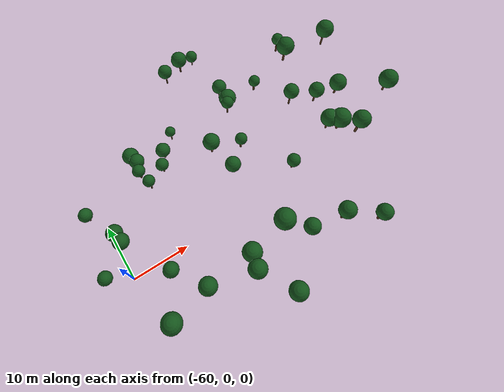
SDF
<sdf version="1.10">
 <world name="hiking_lora_world">
  <model name="valley_forest_trees">
   <static>true</static>
   <link name="trees">
    <visual name="trunk_0">
     <pose>-50.8435 13.5058 5.3451 0 0 0</pose>
     <geometry><cylinder><radius>0.1746</radius><length>2.1231</length></cylinder></geometry>
     <material><ambient>0.2016 0.12240000000000001 0.0576 1</ambient><diffuse>0.28 0.17 0.08 1</diffuse></material>
    </visual>
    <visual name="canopy_0">
     <pose>-50.8435 13.5058 7.0061 0 0 0</pose>
     <geometry><sphere><radius>1.0897</radius></sphere></geometry>
     <material>
      <ambient>0.0576 0.24480000000000002 0.07919999999999999 1</ambient>
      <diffuse>0.08 0.34 0.11 1</diffuse>
     </material>
    </visual>
    <visual name="trunk_1">
     <pose>-32.5349 14.9153 10.3433 0 0 0</pose>
     <geometry><cylinder><radius>0.1518</radius><length>1.9801</length></cylinder></geometry>
     <material><ambient>0.2016 0.12240000000000001 0.0576 1</ambient><diffuse>0.28 0.17 0.08 1</diffuse></material>
    </visual>
    <visual name="canopy_1">
     <pose>-32.5349 14.9153 12.1213 0 0 0</pose>
     <geometry><sphere><radius>1.4326</radius></sphere></geometry>
     <material>
      <ambient>0.0576 0.24480000000000002 0.07919999999999999 1</ambient>
      <diffuse>0.08 0.34 0.11 1</diffuse>
     </material>
    </visual>
    <visual name="trunk_2">
     <pose>-16.4017 12.459 19.0402 0 0 0</pose>
     <geometry><cylinder><radius>0.1387</radius><length>2.6609</length></cylinder></geometry>
     <material><ambient>0.2016 0.12240000000000001 0.0576 1</ambient><diffuse>0.28 0.17 0.08 1</diffuse></material>
    </visual>
    <visual name="canopy_2">
     <pose>-16.4017 12.459 21.1092 0 0 0</pose>
     <geometry><sphere><radius>1.3427</radius></sphere></geometry>
     <material>
      <ambient>0.0576 0.24480000000000002 0.07919999999999999 1</ambient>
      <diffuse>0.08 0.34 0.11 1</diffuse>
     </material>
    </visual>
    <visual name="trunk_3">
     <pose>-39.3307 -8.7537 20.4865 0 0 0</pose>
     <geometry><cylinder><radius>0.1766</radius><length>1.851</length></cylinder></geometry>
     <material><ambient>0.2016 0.12240000000000001 0.0576 1</ambient><diffuse>0.28 0.17 0.08 1</diffuse></material>
    </visual>
    <visual name="canopy_3">
     <pose>-39.3307 -8.7537 22.165 0 0 0</pose>
     <geometry><sphere><radius>1.3692</radius></sphere></geometry>
     <material>
      <ambient>0.0576 0.24480000000000002 0.07919999999999999 1</ambient>
      <diffuse>0.08 0.34 0.11 1</diffuse>
     </material>
    </visual>
    <visual name="trunk_4">
     <pose>-32.3408 27.7564 7.7198 0 0 0</pose>
     <geometry><cylinder><radius>0.111</radius><length>1.7271</length></cylinder></geometry>
     <material><ambient>0.2016 0.12240000000000001 0.0576 1</ambient><diffuse>0.28 0.17 0.08 1</diffuse></material>
    </visual>
    <visual name="canopy_4">
     <pose>-32.3408 27.7564 9.1526 0 0 0</pose>
     <geometry><sphere><radius>1.035</radius></sphere></geometry>
     <material>
      <ambient>0.0576 0.24480000000000002 0.07919999999999999 1</ambient>
      <diffuse>0.08 0.34 0.11 1</diffuse>
     </material>
    </visual>
    <visual name="trunk_5">
     <pose>-33.1917 13.8835 10.7998 0 0 0</pose>
     <geometry><cylinder><radius>0.1252</radius><length>2.4874</length></cylinder></geometry>
     <material><ambient>0.2016 0.12240000000000001 0.0576 1</ambient><diffuse>0.28 0.17 0.08 1</diffuse></material>
    </visual>
    <visual name="canopy_5">
     <pose>-33.1917 13.8835 12.6089 0 0 0</pose>
     <geometry><sphere><radius>1.028</radius></sphere></geometry>
     <material>
      <ambient>0.0576 0.24480000000000002 0.07919999999999999 1</ambient>
      <diffuse>0.08 0.34 0.11 1</diffuse>
     </material>
    </visual>
    <visual name="trunk_6">
     <pose>-32.3789 17.782 9.6566 0 0 0</pose>
     <geometry><cylinder><radius>0.1182</radius><length>2.6484</length></cylinder></geometry>
     <material><ambient>0.2016 0.12240000000000001 0.0576 1</ambient><diffuse>0.28 0.17 0.08 1</diffuse></material>
    </visual>
    <visual name="canopy_6">
     <pose>-32.3789 17.782 11.6486 0 0 0</pose>
     <geometry><sphere><radius>1.2141</radius></sphere></geometry>
     <material>
      <ambient>0.0576 0.24480000000000002 0.07919999999999999 1</ambient>
      <diffuse>0.08 0.34 0.11 1</diffuse>
     </material>
    </visual>
    <visual name="trunk_7">
     <pose>-45.2713 -11.8012 20.4415 0 0 0</pose>
     <geometry><cylinder><radius>0.1621</radius><length>2.1933</length></cylinder></geometry>
     <material><ambient>0.2016 0.12240000000000001 0.0576 1</ambient><diffuse>0.28 0.17 0.08 1</diffuse></material>
    </visual>
    <visual name="canopy_7">
     <pose>-45.2713 -11.8012 22.1797 0 0 0</pose>
     <geometry><sphere><radius>1.1665</radius></sphere></geometry>
     <material>
      <ambient>0.0576 0.24480000000000002 0.07919999999999999 1</ambient>
      <diffuse>0.08 0.34 0.11 1</diffuse>
     </material>
    </visual>
    <visual name="trunk_8">
     <pose>-32.4334 -11.8764 20.4818 0 0 0</pose>
     <geometry><cylinder><radius>0.1607</radius><length>2.3991</length></cylinder></geometry>
     <material><ambient>0.2016 0.12240000000000001 0.0576 1</ambient><diffuse>0.28 0.17 0.08 1</diffuse></material>
    </visual>
    <visual name="canopy_8">
     <pose>-32.4334 -11.8764 22.303 0 0 0</pose>
     <geometry><sphere><radius>1.1304</radius></sphere></geometry>
     <material>
      <ambient>0.0576 0.24480000000000002 0.07919999999999999 1</ambient>
      <diffuse>0.08 0.34 0.11 1</diffuse>
     </material>
    </visual>
    <visual name="trunk_9">
     <pose>-50.3086 15.3823 4.8732 0 0 0</pose>
     <geometry><cylinder><radius>0.1323</radius><length>2.2683</length></cylinder></geometry>
     <material><ambient>0.2016 0.12240000000000001 0.0576 1</ambient><diffuse>0.28 0.17 0.08 1</diffuse></material>
    </visual>
    <visual name="canopy_9">
     <pose>-50.3086 15.3823 6.7108 0 0 0</pose>
     <geometry><sphere><radius>1.279</radius></sphere></geometry>
     <material>
      <ambient>0.0576 0.24480000000000002 0.07919999999999999 1</ambient>
      <diffuse>0.08 0.34 0.11 1</diffuse>
     </material>
    </visual>
    <visual name="trunk_10">
     <pose>-22.3897 -2.9709 19.5791 0 0 0</pose>
     <geometry><cylinder><radius>0.1865</radius><length>2.6411</length></cylinder></geometry>
     <material><ambient>0.2016 0.12240000000000001 0.0576 1</ambient><diffuse>0.28 0.17 0.08 1</diffuse></material>
    </visual>
    <visual name="canopy_10">
     <pose>-22.3897 -2.9709 21.595 0 0 0</pose>
     <geometry><sphere><radius>1.2642</radius></sphere></geometry>
     <material>
      <ambient>0.0576 0.24480000000000002 0.07919999999999999 1</ambient>
      <diffuse>0.08 0.34 0.11 1</diffuse>
     </material>
    </visual>
    <visual name="trunk_11">
     <pose>-44.7259 -9.884 20.2569 0 0 0</pose>
     <geometry><cylinder><radius>0.1703</radius><length>2.1465</length></cylinder></geometry>
     <material><ambient>0.2016 0.12240000000000001 0.0576 1</ambient><diffuse>0.28 0.17 0.08 1</diffuse></material>
    </visual>
    <visual name="canopy_11">
     <pose>-44.7259 -9.884 21.9981 0 0 0</pose>
     <geometry><sphere><radius>1.2146</radius></sphere></geometry>
     <material>
      <ambient>0.0576 0.24480000000000002 0.07919999999999999 1</ambient>
      <diffuse>0.08 0.34 0.11 1</diffuse>
     </material>
    </visual>
    <visual name="trunk_12">
     <pose>-33.2284 -2.6191 18.9386 0 0 0</pose>
     <geometry><cylinder><radius>0.1167</radius><length>1.7686</length></cylinder></geometry>
     <material><ambient>0.2016 0.12240000000000001 0.0576 1</ambient><diffuse>0.28 0.17 0.08 1</diffuse></material>
    </visual>
    <visual name="canopy_12">
     <pose>-33.2284 -2.6191 20.3261 0 0 0</pose>
     <geometry><sphere><radius>0.9149</radius></sphere></geometry>
     <material>
      <ambient>0.0576 0.24480000000000002 0.07919999999999999 1</ambient>
      <diffuse>0.08 0.34 0.11 1</diffuse>
     </material>
    </visual>
    <visual name="trunk_13">
     <pose>-35.8509 5.7956 14.032 0 0 0</pose>
     <geometry><cylinder><radius>0.1648</radius><length>1.9745</length></cylinder></geometry>
     <material><ambient>0.2016 0.12240000000000001 0.0576 1</ambient><diffuse>0.28 0.17 0.08 1</diffuse></material>
    </visual>
    <visual name="canopy_13">
     <pose>-35.8509 5.7956 15.5241 0 0 0</pose>
     <geometry><sphere><radius>0.9179</radius></sphere></geometry>
     <material>
      <ambient>0.0576 0.24480000000000002 0.07919999999999999 1</ambient>
      <diffuse>0.08 0.34 0.11 1</diffuse>
     </material>
    </visual>
    <visual name="trunk_14">
     <pose>-56.3447 -11.3403 17.7225 0 0 0</pose>
     <geometry><cylinder><radius>0.186</radius><length>2.7566</length></cylinder></geometry>
     <material><ambient>0.2016 0.12240000000000001 0.0576 1</ambient><diffuse>0.28 0.17 0.08 1</diffuse></material>
    </visual>
    <visual name="canopy_14">
     <pose>-56.3447 -11.3403 19.8147 0 0 0</pose>
     <geometry><sphere><radius>1.298</radius></sphere></geometry>
     <material>
      <ambient>0.0576 0.24480000000000002 0.07919999999999999 1</ambient>
      <diffuse>0.08 0.34 0.11 1</diffuse>
     </material>
    </visual>
    <visual name="trunk_15">
     <pose>-26.2494 7.094 16.7737 0 0 0</pose>
     <geometry><cylinder><radius>0.1265</radius><length>2.7188</length></cylinder></geometry>
     <material><ambient>0.2016 0.12240000000000001 0.0576 1</ambient><diffuse>0.28 0.17 0.08 1</diffuse></material>
    </visual>
    <visual name="canopy_15">
     <pose>-26.2494 7.094 18.7575 0 0 0</pose>
     <geometry><sphere><radius>1.1353</radius></sphere></geometry>
     <material>
      <ambient>0.0576 0.24480000000000002 0.07919999999999999 1</ambient>
      <diffuse>0.08 0.34 0.11 1</diffuse>
     </material>
    </visual>
    <visual name="trunk_16">
     <pose>-37.3044 -11.2553 20.9589 0 0 0</pose>
     <geometry><cylinder><radius>0.1293</radius><length>2.2974</length></cylinder></geometry>
     <material><ambient>0.2016 0.12240000000000001 0.0576 1</ambient><diffuse>0.28 0.17 0.08 1</diffuse></material>
    </visual>
    <visual name="canopy_16">
     <pose>-37.3044 -11.2553 22.6793 0 0 0</pose>
     <geometry><sphere><radius>1.0396</radius></sphere></geometry>
     <material>
      <ambient>0.0576 0.24480000000000002 0.07919999999999999 1</ambient>
      <diffuse>0.08 0.34 0.11 1</diffuse>
     </material>
    </visual>
    <visual name="trunk_17">
     <pose>-21.374 15.1419 15.5436 0 0 0</pose>
     <geometry><cylinder><radius>0.1712</radius><length>2.748</length></cylinder></geometry>
     <material><ambient>0.2016 0.12240000000000001 0.0576 1</ambient><diffuse>0.28 0.17 0.08 1</diffuse></material>
    </visual>
    <visual name="canopy_17">
     <pose>-21.374 15.1419 17.7108 0 0 0</pose>
     <geometry><sphere><radius>1.442</radius></sphere></geometry>
     <material>
      <ambient>0.0576 0.24480000000000002 0.07919999999999999 1</ambient>
      <diffuse>0.08 0.34 0.11 1</diffuse>
     </material>
    </visual>
    <visual name="trunk_18">
     <pose>-24.2516 -1.1135 19.1632 0 0 0</pose>
     <geometry><cylinder><radius>0.158</radius><length>2.028</length></cylinder></geometry>
     <material><ambient>0.2016 0.12240000000000001 0.0576 1</ambient><diffuse>0.28 0.17 0.08 1</diffuse></material>
    </visual>
    <visual name="canopy_18">
     <pose>-24.2516 -1.1135 20.9495 0 0 0</pose>
     <geometry><sphere><radius>1.4041</radius></sphere></geometry>
     <material>
      <ambient>0.0576 0.24480000000000002 0.07919999999999999 1</ambient>
      <diffuse>0.08 0.34 0.11 1</diffuse>
     </material>
    </visual>
    <visual name="trunk_19">
     <pose>-39.3625 2.5544 15.0531 0 0 0</pose>
     <geometry><cylinder><radius>0.1685</radius><length>1.9514</length></cylinder></geometry>
     <material><ambient>0.2016 0.12240000000000001 0.0576 1</ambient><diffuse>0.28 0.17 0.08 1</diffuse></material>
    </visual>
    <visual name="canopy_19">
     <pose>-39.3625 2.5544 16.6555 0 0 0</pose>
     <geometry><sphere><radius>1.1395</radius></sphere></geometry>
     <material>
      <ambient>0.0576 0.24480000000000002 0.07919999999999999 1</ambient>
      <diffuse>0.08 0.34 0.11 1</diffuse>
     </material>
    </visual>
    <visual name="trunk_20">
     <pose>-28.0254 -14.3344 18.987 0 0 0</pose>
     <geometry><cylinder><radius>0.179</radius><length>2.0737</length></cylinder></geometry>
     <material><ambient>0.2016 0.12240000000000001 0.0576 1</ambient><diffuse>0.28 0.17 0.08 1</diffuse></material>
    </visual>
    <visual name="canopy_20">
     <pose>-28.0254 -14.3344 20.6173 0 0 0</pose>
     <geometry><sphere><radius>1.079</radius></sphere></geometry>
     <material>
      <ambient>0.0576 0.24480000000000002 0.07919999999999999 1</ambient>
      <diffuse>0.08 0.34 0.11 1</diffuse>
     </material>
    </visual>
    <visual name="trunk_21">
     <pose>-20.627 3.8595 18.9225 0 0 0</pose>
     <geometry><cylinder><radius>0.1529</radius><length>1.9142</length></cylinder></geometry>
     <material><ambient>0.2016 0.12240000000000001 0.0576 1</ambient><diffuse>0.28 0.17 0.08 1</diffuse></material>
    </visual>
    <visual name="canopy_21">
     <pose>-20.627 3.8595 20.5532 0 0 0</pose>
     <geometry><sphere><radius>1.2247</radius></sphere></geometry>
     <material>
      <ambient>0.0576 0.24480000000000002 0.07919999999999999 1</ambient>
      <diffuse>0.08 0.34 0.11 1</diffuse>
     </material>
    </visual>
    <visual name="trunk_22">
     <pose>-45.7473 14.1678 6.3523 0 0 0</pose>
     <geometry><cylinder><radius>0.1201</radius><length>2.1239</length></cylinder></geometry>
     <material><ambient>0.2016 0.12240000000000001 0.0576 1</ambient><diffuse>0.28 0.17 0.08 1</diffuse></material>
    </visual>
    <visual name="canopy_22">
     <pose>-45.7473 14.1678 8.0838 0 0 0</pose>
     <geometry><sphere><radius>1.2174</radius></sphere></geometry>
     <material>
      <ambient>0.0576 0.24480000000000002 0.07919999999999999 1</ambient>
      <diffuse>0.08 0.34 0.11 1</diffuse>
     </material>
    </visual>
    <visual name="trunk_23">
     <pose>-61.5941 -1.2052 11.9424 0 0 0</pose>
     <geometry><cylinder><radius>0.1435</radius><length>2.5194</length></cylinder></geometry>
     <material><ambient>0.2016 0.12240000000000001 0.0576 1</ambient><diffuse>0.28 0.17 0.08 1</diffuse></material>
    </visual>
    <visual name="canopy_23">
     <pose>-61.5941 -1.2052 13.7528 0 0 0</pose>
     <geometry><sphere><radius>1.0013</radius></sphere></geometry>
     <material>
      <ambient>0.0576 0.24480000000000002 0.07919999999999999 1</ambient>
      <diffuse>0.08 0.34 0.11 1</diffuse>
     </material>
    </visual>
    <visual name="trunk_24">
     <pose>-20.8231 17.8691 14.5979 0 0 0</pose>
     <geometry><cylinder><radius>0.1538</radius><length>2.395</length></cylinder></geometry>
     <material><ambient>0.2016 0.12240000000000001 0.0576 1</ambient><diffuse>0.28 0.17 0.08 1</diffuse></material>
    </visual>
    <visual name="canopy_24">
     <pose>-20.8231 17.8691 16.3199 0 0 0</pose>
     <geometry><sphere><radius>0.9537</radius></sphere></geometry>
     <material>
      <ambient>0.0576 0.24480000000000002 0.07919999999999999 1</ambient>
      <diffuse>0.08 0.34 0.11 1</diffuse>
     </material>
    </visual>
    <visual name="trunk_25">
     <pose>-53.6513 -5.7599 16.3205 0 0 0</pose>
     <geometry><cylinder><radius>0.1384</radius><length>2.1162</length></cylinder></geometry>
     <material><ambient>0.2016 0.12240000000000001 0.0576 1</ambient><diffuse>0.28 0.17 0.08 1</diffuse></material>
    </visual>
    <visual name="canopy_25">
     <pose>-53.6513 -5.7599 17.9483 0 0 0</pose>
     <geometry><sphere><radius>1.0359</radius></sphere></geometry>
     <material>
      <ambient>0.0576 0.24480000000000002 0.07919999999999999 1</ambient>
      <diffuse>0.08 0.34 0.11 1</diffuse>
     </material>
    </visual>
    <visual name="trunk_26">
     <pose>-23.6325 4.7799 18.1545 0 0 0</pose>
     <geometry><cylinder><radius>0.1238</radius><length>2.2527</length></cylinder></geometry>
     <material><ambient>0.2016 0.12240000000000001 0.0576 1</ambient><diffuse>0.28 0.17 0.08 1</diffuse></material>
    </visual>
    <visual name="canopy_26">
     <pose>-23.6325 4.7799 19.9002 0 0 0</pose>
     <geometry><sphere><radius>1.126</radius></sphere></geometry>
     <material>
      <ambient>0.0576 0.24480000000000002 0.07919999999999999 1</ambient>
      <diffuse>0.08 0.34 0.11 1</diffuse>
     </material>
    </visual>
    <visual name="trunk_27">
     <pose>-47.1465 11.6664 7.021 0 0 0</pose>
     <geometry><cylinder><radius>0.138</radius><length>2.0546</length></cylinder></geometry>
     <material><ambient>0.2016 0.12240000000000001 0.0576 1</ambient><diffuse>0.28 0.17 0.08 1</diffuse></material>
    </visual>
    <visual name="canopy_27">
     <pose>-47.1465 11.6664 8.637 0 0 0</pose>
     <geometry><sphere><radius>1.0703</radius></sphere></geometry>
     <material>
      <ambient>0.0576 0.24480000000000002 0.07919999999999999 1</ambient>
      <diffuse>0.08 0.34 0.11 1</diffuse>
     </material>
    </visual>
    <visual name="trunk_28">
     <pose>-25.401 -0.1778 18.9637 0 0 0</pose>
     <geometry><cylinder><radius>0.1418</radius><length>2.0656</length></cylinder></geometry>
     <material><ambient>0.2016 0.12240000000000001 0.0576 1</ambient><diffuse>0.28 0.17 0.08 1</diffuse></material>
    </visual>
    <visual name="canopy_28">
     <pose>-25.401 -0.1778 20.681 0 0 0</pose>
     <geometry><sphere><radius>1.2445</radius></sphere></geometry>
     <material>
      <ambient>0.0576 0.24480000000000002 0.07919999999999999 1</ambient>
      <diffuse>0.08 0.34 0.11 1</diffuse>
     </material>
    </visual>
    <visual name="trunk_29">
     <pose>-58.0192 3.014 9.5811 0 0 0</pose>
     <geometry><cylinder><radius>0.1181</radius><length>1.781</length></cylinder></geometry>
     <material><ambient>0.2016 0.12240000000000001 0.0576 1</ambient><diffuse>0.28 0.17 0.08 1</diffuse></material>
    </visual>
    <visual name="canopy_29">
     <pose>-58.0192 3.014 11.1608 0 0 0</pose>
     <geometry><sphere><radius>1.2529</radius></sphere></geometry>
     <material>
      <ambient>0.0576 0.24480000000000002 0.07919999999999999 1</ambient>
      <diffuse>0.08 0.34 0.11 1</diffuse>
     </material>
    </visual>
    <visual name="trunk_30">
     <pose>-38.032 27.4968 6.804 0 0 0</pose>
     <geometry><cylinder><radius>0.1237</radius><length>2.7885</length></cylinder></geometry>
     <material><ambient>0.2016 0.12240000000000001 0.0576 1</ambient><diffuse>0.28 0.17 0.08 1</diffuse></material>
    </visual>
    <visual name="canopy_30">
     <pose>-38.032 27.4968 8.8881 0 0 0</pose>
     <geometry><sphere><radius>1.2542</radius></sphere></geometry>
     <material>
      <ambient>0.0576 0.24480000000000002 0.07919999999999999 1</ambient>
      <diffuse>0.08 0.34 0.11 1</diffuse>
     </material>
    </visual>
    <visual name="trunk_31">
     <pose>-50.3035 10.0274 7.3198 0 0 0</pose>
     <geometry><cylinder><radius>0.1257</radius><length>2.6253</length></cylinder></geometry>
     <material><ambient>0.2016 0.12240000000000001 0.0576 1</ambient><diffuse>0.28 0.17 0.08 1</diffuse></material>
    </visual>
    <visual name="canopy_31">
     <pose>-50.3035 10.0274 9.1769 0 0 0</pose>
     <geometry><sphere><radius>0.9899</radius></sphere></geometry>
     <material>
      <ambient>0.0576 0.24480000000000002 0.07919999999999999 1</ambient>
      <diffuse>0.08 0.34 0.11 1</diffuse>
     </material>
    </visual>
    <visual name="trunk_32">
     <pose>-50.9047 -10.222 18.9942 0 0 0</pose>
     <geometry><cylinder><radius>0.1867</radius><length>2.3487</length></cylinder></geometry>
     <material><ambient>0.2016 0.12240000000000001 0.0576 1</ambient><diffuse>0.28 0.17 0.08 1</diffuse></material>
    </visual>
    <visual name="canopy_32">
     <pose>-50.9047 -10.222 20.794 0 0 0</pose>
     <geometry><sphere><radius>1.1373</radius></sphere></geometry>
     <material>
      <ambient>0.0576 0.24480000000000002 0.07919999999999999 1</ambient>
      <diffuse>0.08 0.34 0.11 1</diffuse>
     </material>
    </visual>
    <visual name="trunk_33">
     <pose>-61.3798 11.2466 5.1169 0 0 0</pose>
     <geometry><cylinder><radius>0.1388</radius><length>2.1309</length></cylinder></geometry>
     <material><ambient>0.2016 0.12240000000000001 0.0576 1</ambient><diffuse>0.28 0.17 0.08 1</diffuse></material>
    </visual>
    <visual name="canopy_33">
     <pose>-61.3798 11.2466 6.8034 0 0 0</pose>
     <geometry><sphere><radius>1.1292</radius></sphere></geometry>
     <material>
      <ambient>0.0576 0.24480000000000002 0.07919999999999999 1</ambient>
      <diffuse>0.08 0.34 0.11 1</diffuse>
     </material>
    </visual>
    <visual name="trunk_34">
     <pose>-42.7117 -16.1538 20.082 0 0 0</pose>
     <geometry><cylinder><radius>0.1681</radius><length>1.9631</length></cylinder></geometry>
     <material><ambient>0.2016 0.12240000000000001 0.0576 1</ambient><diffuse>0.28 0.17 0.08 1</diffuse></material>
    </visual>
    <visual name="canopy_34">
     <pose>-42.7117 -16.1538 21.7047 0 0 0</pose>
     <geometry><sphere><radius>1.1656</radius></sphere></geometry>
     <material>
      <ambient>0.0576 0.24480000000000002 0.07919999999999999 1</ambient>
      <diffuse>0.08 0.34 0.11 1</diffuse>
     </material>
    </visual>
    <visual name="trunk_35">
     <pose>-58.3458 4.8002 8.7231 0 0 0</pose>
     <geometry><cylinder><radius>0.1384</radius><length>2.3778</length></cylinder></geometry>
     <material><ambient>0.2016 0.12240000000000001 0.0576 1</ambient><diffuse>0.28 0.17 0.08 1</diffuse></material>
    </visual>
    <visual name="canopy_35">
     <pose>-58.3458 4.8002 10.6152 0 0 0</pose>
     <geometry><sphere><radius>1.2786</radius></sphere></geometry>
     <material>
      <ambient>0.0576 0.24480000000000002 0.07919999999999999 1</ambient>
      <diffuse>0.08 0.34 0.11 1</diffuse>
     </material>
    </visual>
    <visual name="trunk_36">
     <pose>-39.3662 8.6803 11.4379 0 0 0</pose>
     <geometry><cylinder><radius>0.1412</radius><length>2.6794</length></cylinder></geometry>
     <material><ambient>0.2016 0.12240000000000001 0.0576 1</ambient><diffuse>0.28 0.17 0.08 1</diffuse></material>
    </visual>
    <visual name="canopy_36">
     <pose>-39.3662 8.6803 13.5057 0 0 0</pose>
     <geometry><sphere><radius>1.3239</radius></sphere></geometry>
     <material>
      <ambient>0.0576 0.24480000000000002 0.07919999999999999 1</ambient>
      <diffuse>0.08 0.34 0.11 1</diffuse>
     </material>
    </visual>
    <visual name="trunk_37">
     <pose>-14.7533 0.1402 19.7481 0 0 0</pose>
     <geometry><cylinder><radius>0.1437</radius><length>1.8667</length></cylinder></geometry>
     <material><ambient>0.2016 0.12240000000000001 0.0576 1</ambient><diffuse>0.28 0.17 0.08 1</diffuse></material>
    </visual>
    <visual name="canopy_37">
     <pose>-14.7533 0.1402 21.425 0 0 0</pose>
     <geometry><sphere><radius>1.352</radius></sphere></geometry>
     <material>
      <ambient>0.0576 0.24480000000000002 0.07919999999999999 1</ambient>
      <diffuse>0.08 0.34 0.11 1</diffuse>
     </material>
    </visual>
    <visual name="trunk_38">
     <pose>-43 16.7031 6.2836 0 0 0</pose>
     <geometry><cylinder><radius>0.114</radius><length>2.1552</length></cylinder></geometry>
     <material><ambient>0.2016 0.12240000000000001 0.0576 1</ambient><diffuse>0.28 0.17 0.08 1</diffuse></material>
    </visual>
    <visual name="canopy_38">
     <pose>-43 16.7031 7.8458 0 0 0</pose>
     <geometry><sphere><radius>0.8811</radius></sphere></geometry>
     <material>
      <ambient>0.0576 0.24480000000000002 0.07919999999999999 1</ambient>
      <diffuse>0.08 0.34 0.11 1</diffuse>
     </material>
    </visual>
    <visual name="trunk_39">
     <pose>-27.7126 14.2863 12.5061 0 0 0</pose>
     <geometry><cylinder><radius>0.1766</radius><length>1.8743</length></cylinder></geometry>
     <material><ambient>0.2016 0.12240000000000001 0.0576 1</ambient><diffuse>0.28 0.17 0.08 1</diffuse></material>
    </visual>
    <visual name="canopy_39">
     <pose>-27.7126 14.2863 13.951 0 0 0</pose>
     <geometry><sphere><radius>0.9231</radius></sphere></geometry>
     <material>
      <ambient>0.0576 0.24480000000000002 0.07919999999999999 1</ambient>
      <diffuse>0.08 0.34 0.11 1</diffuse>
     </material>
    </visual>
    <visual name="trunk_40">
     <pose>-50.7351 17.01 4.3761 0 0 0</pose>
     <geometry><cylinder><radius>0.1217</radius><length>2.3614</length></cylinder></geometry>
     <material><ambient>0.2016 0.12240000000000001 0.0576 1</ambient><diffuse>0.28 0.17 0.08 1</diffuse></material>
    </visual>
    <visual name="canopy_40">
     <pose>-50.7351 17.01 6.3321 0 0 0</pose>
     <geometry><sphere><radius>1.4098</radius></sphere></geometry>
     <material>
      <ambient>0.0576 0.24480000000000002 0.07919999999999999 1</ambient>
      <diffuse>0.08 0.34 0.11 1</diffuse>
     </material>
    </visual>
    <visual name="trunk_41">
     <pose>-34.8156 27.9693 7.5788 0 0 0</pose>
     <geometry><cylinder><radius>0.1523</radius><length>2.7006</length></cylinder></geometry>
     <material><ambient>0.2016 0.12240000000000001 0.0576 1</ambient><diffuse>0.28 0.17 0.08 1</diffuse></material>
    </visual>
    <visual name="canopy_41">
     <pose>-34.8156 27.9693 9.7041 0 0 0</pose>
     <geometry><sphere><radius>1.4091</radius></sphere></geometry>
     <material>
      <ambient>0.0576 0.24480000000000002 0.07919999999999999 1</ambient>
      <diffuse>0.08 0.34 0.11 1</diffuse>
     </material>
    </visual>
   </link>
  </model>
 </world>
</sdf>
